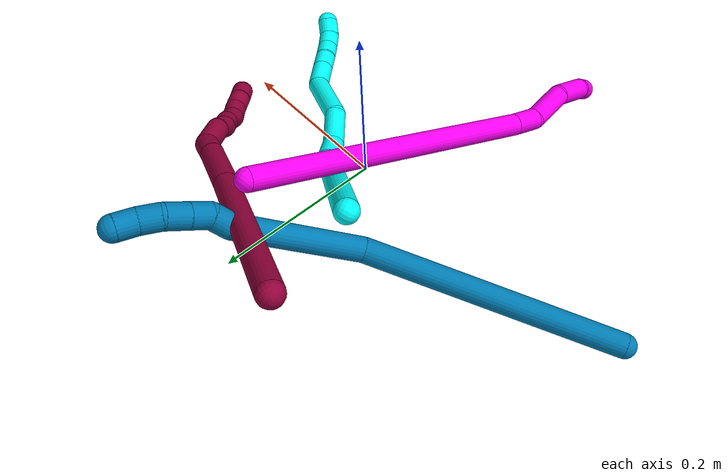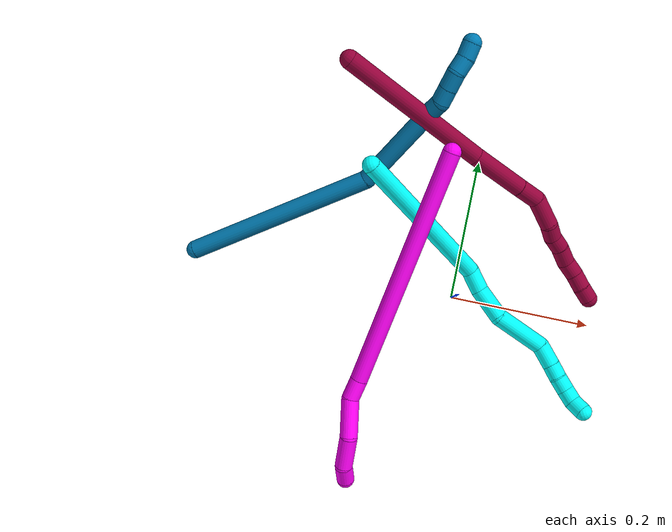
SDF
<sdf version="1.7">
 <world name="default">
  <model name="3">
   <static>0</static>
   <link name="3">
    <collision name="collision-cylinder-e_1_1_4">
     <pose>0.103797 -0.050793 -0.012128 1.80519 1.10467 1.32587</pose>
     <geometry><cylinder><radius>0.0125</radius><length>0.232386</length></cylinder></geometry>
     <surface>
      <friction><ode><mu>1.16</mu><mu2>1.16</mu2><slip1>0</slip1><slip2>0</slip2></ode></friction>
      <contact><ode><kp>1e+06</kp><kd>1</kd><max_vel>0</max_vel><min_depth>0.001</min_depth></ode></contact>
     </surface>
    </collision>
    <visual name="visual-cylinder-e_1_1_4">
     <pose>0.103797 -0.050793 -0.012128 1.80519 1.10467 1.32587</pose>
     <geometry><cylinder><radius>0.0125</radius><length>0.232386</length></cylinder></geometry>
     <material><ambient>0.003922 1 0.996078 1</ambient></material>
    </visual>
    <collision name="collision-cylinder-e_2_4_5">
     <pose>0.223633 -0.100813 -0.025017 -2.34834 1.50335 -2.29911</pose>
     <geometry><cylinder><radius>0.0125</radius><length>0.032151</length></cylinder></geometry>
     <surface>
      <friction><ode><mu>1.16</mu><mu2>1.16</mu2><slip1>0</slip1><slip2>0</slip2></ode></friction>
      <contact><ode><kp>1e+06</kp><kd>1</kd><max_vel>0</max_vel><min_depth>0.001</min_depth></ode></contact>
     </surface>
    </collision>
    <visual name="visual-cylinder-e_2_4_5">
     <pose>0.223633 -0.100813 -0.025017 -2.34834 1.50335 -2.29911</pose>
     <geometry><cylinder><radius>0.0125</radius><length>0.032151</length></cylinder></geometry>
     <material><ambient>0.003922 1 0.996078 1</ambient></material>
    </visual>
    <collision name="collision-cylinder-e_3_5_6">
     <pose>0.261497 -0.094981 -0.032717 -2.51161 1.19587 -2.24917</pose>
     <geometry><cylinder><radius>0.0125</radius><length>0.046908</length></cylinder></geometry>
     <surface>
      <friction><ode><mu>1.16</mu><mu2>1.16</mu2><slip1>0</slip1><slip2>0</slip2></ode></friction>
      <contact><ode><kp>1e+06</kp><kd>1</kd><max_vel>0</max_vel><min_depth>0.001</min_depth></ode></contact>
     </surface>
    </collision>
    <visual name="visual-cylinder-e_3_5_6">
     <pose>0.261497 -0.094981 -0.032717 -2.51161 1.19587 -2.24917</pose>
     <geometry><cylinder><radius>0.0125</radius><length>0.046908</length></cylinder></geometry>
     <material><ambient>0.003922 1 0.996078 1</ambient></material>
    </visual>
    <collision name="collision-cylinder-e_4_6_7">
     <pose>0.316202 -0.096915 -0.056916 2.75659 1.05549 2.49619</pose>
     <geometry><cylinder><radius>0.0125</radius><length>0.075576</length></cylinder></geometry>
     <surface>
      <friction><ode><mu>1.16</mu><mu2>1.16</mu2><slip1>0</slip1><slip2>0</slip2></ode></friction>
      <contact><ode><kp>1e+06</kp><kd>1</kd><max_vel>0</max_vel><min_depth>0.001</min_depth></ode></contact>
     </surface>
    </collision>
    <visual name="visual-cylinder-e_4_6_7">
     <pose>0.316202 -0.096915 -0.056916 2.75659 1.05549 2.49619</pose>
     <geometry><cylinder><radius>0.0125</radius><length>0.075576</length></cylinder></geometry>
     <material><ambient>0.003922 1 0.996078 1</ambient></material>
    </visual>
    <collision name="collision-cylinder-e_5_7_8">
     <pose>0.364119 -0.099918 -0.077238 -2.22546 1.24796 -1.94063</pose>
     <geometry><cylinder><radius>0.0125</radius><length>0.031711</length></cylinder></geometry>
     <surface>
      <friction><ode><mu>1.16</mu><mu2>1.16</mu2><slip1>0</slip1><slip2>0</slip2></ode></friction>
      <contact><ode><kp>1e+06</kp><kd>1</kd><max_vel>0</max_vel><min_depth>0.001</min_depth></ode></contact>
     </surface>
    </collision>
    <visual name="visual-cylinder-e_5_7_8">
     <pose>0.364119 -0.099918 -0.077238 -2.22546 1.24796 -1.94063</pose>
     <geometry><cylinder><radius>0.0125</radius><length>0.031711</length></cylinder></geometry>
     <material><ambient>0.003922 1 0.996078 1</ambient></material>
    </visual>
    <collision name="collision-cylinder-e_6_8_9">
     <pose>0.388575 -0.092775 -0.082192 -2.11106 1.19869 -1.75734</pose>
     <geometry><cylinder><radius>0.0125</radius><length>0.020222</length></cylinder></geometry>
     <surface>
      <friction><ode><mu>1.16</mu><mu2>1.16</mu2><slip1>0</slip1><slip2>0</slip2></ode></friction>
      <contact><ode><kp>1e+06</kp><kd>1</kd><max_vel>0</max_vel><min_depth>0.001</min_depth></ode></contact>
     </surface>
    </collision>
    <visual name="visual-cylinder-e_6_8_9">
     <pose>0.388575 -0.092775 -0.082192 -2.11106 1.19869 -1.75734</pose>
     <geometry><cylinder><radius>0.0125</radius><length>0.020222</length></cylinder></geometry>
     <material><ambient>0.003922 1 0.996078 1</ambient></material>
    </visual>
    <collision name="collision-cylinder-e_7_9_10">
     <pose>0.408003 -0.088103 -0.085966 -2.46265 1.33359 -2.29806</pose>
     <geometry><cylinder><radius>0.0125</radius><length>0.020595</length></cylinder></geometry>
     <surface>
      <friction><ode><mu>1.16</mu><mu2>1.16</mu2><slip1>0</slip1><slip2>0</slip2></ode></friction>
      <contact><ode><kp>1e+06</kp><kd>1</kd><max_vel>0</max_vel><min_depth>0.001</min_depth></ode></contact>
     </surface>
    </collision>
    <visual name="visual-cylinder-e_7_9_10">
     <pose>0.408003 -0.088103 -0.085966 -2.46265 1.33359 -2.29806</pose>
     <geometry><cylinder><radius>0.0125</radius><length>0.020595</length></cylinder></geometry>
     <material><ambient>0.003922 1 0.996078 1</ambient></material>
    </visual>
    <collision name="collision-cylinder-e_8_10_11">
     <pose>0.42697 -0.083069 -0.090662 -2.24565 1.10512 -1.81759</pose>
     <geometry><cylinder><radius>0.0125</radius><length>0.020051</length></cylinder></geometry>
     <surface>
      <friction><ode><mu>1.16</mu><mu2>1.16</mu2><slip1>0</slip1><slip2>0</slip2></ode></friction>
      <contact><ode><kp>1e+06</kp><kd>1</kd><max_vel>0</max_vel><min_depth>0.001</min_depth></ode></contact>
     </surface>
    </collision>
    <visual name="visual-cylinder-e_8_10_11">
     <pose>0.42697 -0.083069 -0.090662 -2.24565 1.10512 -1.81759</pose>
     <geometry><cylinder><radius>0.0125</radius><length>0.020051</length></cylinder></geometry>
     <material><ambient>0.003922 1 0.996078 1</ambient></material>
    </visual>
    <collision name="collision-cylinder-e_9_11_2">
     <pose>0.442847 -0.074583 -0.099084 -2.41649 0.745408 -1.60107</pose>
     <geometry><cylinder><radius>0.0125</radius><length>0.0204</length></cylinder></geometry>
     <surface>
      <friction><ode><mu>1.16</mu><mu2>1.16</mu2><slip1>0</slip1><slip2>0</slip2></ode></friction>
      <contact><ode><kp>1e+06</kp><kd>1</kd><max_vel>0</max_vel><min_depth>0.001</min_depth></ode></contact>
     </surface>
    </collision>
    <visual name="visual-cylinder-e_9_11_2">
     <pose>0.442847 -0.074583 -0.099084 -2.41649 0.745408 -1.60107</pose>
     <geometry><cylinder><radius>0.0125</radius><length>0.0204</length></cylinder></geometry>
     <material><ambient>0.003922 1 0.996078 1</ambient></material>
    </visual>
    <collision name="collision-sphere-2">
     <pose>0.449765 -0.069612 -0.104693 0 -0 0</pose>
     <geometry><sphere><radius>0.0125</radius></sphere></geometry>
     <surface>
      <friction><ode><mu>1.16</mu><mu2>1.16</mu2><slip1>0</slip1><slip2>0</slip2></ode></friction>
      <contact><ode><kp>1e+06</kp><kd>1</kd><max_vel>0</max_vel><min_depth>0.001</min_depth></ode></contact>
     </surface>
    </collision>
    <visual name="visual-sphere-2">
     <pose>0.449765 -0.069612 -0.104693 0 -0 0</pose>
     <geometry><sphere><radius>0.0125</radius></sphere></geometry>
     <material><ambient>0.003922 1 0.996078 1</ambient></material>
    </visual>
    <collision name="collision-sphere-11">
     <pose>0.435929 -0.079554 -0.093474 0 -0 0</pose>
     <geometry><sphere><radius>0.0125</radius></sphere></geometry>
     <surface>
      <friction><ode><mu>1.16</mu><mu2>1.16</mu2><slip1>0</slip1><slip2>0</slip2></ode></friction>
      <contact><ode><kp>1e+06</kp><kd>1</kd><max_vel>0</max_vel><min_depth>0.001</min_depth></ode></contact>
     </surface>
    </collision>
    <visual name="visual-sphere-11">
     <pose>0.435929 -0.079554 -0.093474 0 -0 0</pose>
     <geometry><sphere><radius>0.0125</radius></sphere></geometry>
     <material><ambient>0.003922 1 0.996078 1</ambient></material>
    </visual>
    <collision name="collision-sphere-10">
     <pose>0.418012 -0.086584 -0.087849 0 -0 0</pose>
     <geometry><sphere><radius>0.0125</radius></sphere></geometry>
     <surface>
      <friction><ode><mu>1.16</mu><mu2>1.16</mu2><slip1>0</slip1><slip2>0</slip2></ode></friction>
      <contact><ode><kp>1e+06</kp><kd>1</kd><max_vel>0</max_vel><min_depth>0.001</min_depth></ode></contact>
     </surface>
    </collision>
    <visual name="visual-sphere-10">
     <pose>0.418012 -0.086584 -0.087849 0 -0 0</pose>
     <geometry><sphere><radius>0.0125</radius></sphere></geometry>
     <material><ambient>0.003922 1 0.996078 1</ambient></material>
    </visual>
    <collision name="collision-sphere-9">
     <pose>0.397994 -0.089623 -0.084083 0 -0 0</pose>
     <geometry><sphere><radius>0.0125</radius></sphere></geometry>
     <surface>
      <friction><ode><mu>1.16</mu><mu2>1.16</mu2><slip1>0</slip1><slip2>0</slip2></ode></friction>
      <contact><ode><kp>1e+06</kp><kd>1</kd><max_vel>0</max_vel><min_depth>0.001</min_depth></ode></contact>
     </surface>
    </collision>
    <visual name="visual-sphere-9">
     <pose>0.397994 -0.089623 -0.084083 0 -0 0</pose>
     <geometry><sphere><radius>0.0125</radius></sphere></geometry>
     <material><ambient>0.003922 1 0.996078 1</ambient></material>
    </visual>
    <collision name="collision-sphere-4">
     <pose>0.207595 -0.101585 -0.024257 0 -0 0</pose>
     <geometry><sphere><radius>0.0125</radius></sphere></geometry>
     <surface>
      <friction><ode><mu>1.16</mu><mu2>1.16</mu2><slip1>0</slip1><slip2>0</slip2></ode></friction>
      <contact><ode><kp>1e+06</kp><kd>1</kd><max_vel>0</max_vel><min_depth>0.001</min_depth></ode></contact>
     </surface>
    </collision>
    <visual name="visual-sphere-4">
     <pose>0.207595 -0.101585 -0.024257 0 -0 0</pose>
     <geometry><sphere><radius>0.0125</radius></sphere></geometry>
     <material><ambient>0.003922 1 0.996078 1</ambient></material>
    </visual>
    <collision name="collision-sphere-1">
     <geometry><sphere><radius>0.0125</radius></sphere></geometry>
     <surface>
      <friction><ode><mu>1.16</mu><mu2>1.16</mu2><slip1>0</slip1><slip2>0</slip2></ode></friction>
      <contact><ode><kp>1e+06</kp><kd>1</kd><max_vel>0</max_vel><min_depth>0.001</min_depth></ode></contact>
     </surface>
    </collision>
    <visual name="visual-sphere-1">
     <geometry><sphere><radius>0.0125</radius></sphere></geometry>
     <material><ambient>0.003922 1 0.996078 1</ambient></material>
    </visual>
    <collision name="collision-sphere-8">
     <pose>0.379156 -0.095928 -0.080301 0 -0 0</pose>
     <geometry><sphere><radius>0.0125</radius></sphere></geometry>
     <surface>
      <friction><ode><mu>1.16</mu><mu2>1.16</mu2><slip1>0</slip1><slip2>0</slip2></ode></friction>
      <contact><ode><kp>1e+06</kp><kd>1</kd><max_vel>0</max_vel><min_depth>0.001</min_depth></ode></contact>
     </surface>
    </collision>
    <visual name="visual-sphere-8">
     <pose>0.379156 -0.095928 -0.080301 0 -0 0</pose>
     <geometry><sphere><radius>0.0125</radius></sphere></geometry>
     <material><ambient>0.003922 1 0.996078 1</ambient></material>
    </visual>
    <collision name="collision-sphere-5">
     <pose>0.239672 -0.100041 -0.025777 0 -0 0</pose>
     <geometry><sphere><radius>0.0125</radius></sphere></geometry>
     <surface>
      <friction><ode><mu>1.16</mu><mu2>1.16</mu2><slip1>0</slip1><slip2>0</slip2></ode></friction>
      <contact><ode><kp>1e+06</kp><kd>1</kd><max_vel>0</max_vel><min_depth>0.001</min_depth></ode></contact>
     </surface>
    </collision>
    <visual name="visual-sphere-5">
     <pose>0.239672 -0.100041 -0.025777 0 -0 0</pose>
     <geometry><sphere><radius>0.0125</radius></sphere></geometry>
     <material><ambient>0.003922 1 0.996078 1</ambient></material>
    </visual>
    <collision name="collision-sphere-6">
     <pose>0.283321 -0.089921 -0.039657 0 -0 0</pose>
     <geometry><sphere><radius>0.0125</radius></sphere></geometry>
     <surface>
      <friction><ode><mu>1.16</mu><mu2>1.16</mu2><slip1>0</slip1><slip2>0</slip2></ode></friction>
      <contact><ode><kp>1e+06</kp><kd>1</kd><max_vel>0</max_vel><min_depth>0.001</min_depth></ode></contact>
     </surface>
    </collision>
    <visual name="visual-sphere-6">
     <pose>0.283321 -0.089921 -0.039657 0 -0 0</pose>
     <geometry><sphere><radius>0.0125</radius></sphere></geometry>
     <material><ambient>0.003922 1 0.996078 1</ambient></material>
    </visual>
    <collision name="collision-sphere-7">
     <pose>0.349083 -0.103909 -0.074175 0 -0 0</pose>
     <geometry><sphere><radius>0.0125</radius></sphere></geometry>
     <surface>
      <friction><ode><mu>1.16</mu><mu2>1.16</mu2><slip1>0</slip1><slip2>0</slip2></ode></friction>
      <contact><ode><kp>1e+06</kp><kd>1</kd><max_vel>0</max_vel><min_depth>0.001</min_depth></ode></contact>
     </surface>
    </collision>
    <visual name="visual-sphere-7">
     <pose>0.349083 -0.103909 -0.074175 0 -0 0</pose>
     <geometry><sphere><radius>0.0125</radius></sphere></geometry>
     <material><ambient>0.003922 1 0.996078 1</ambient></material>
    </visual>
    <inertial>
     <pose>0.225754 -0.073741 -0.03836 0 -0 0</pose>
     <mass>0.5</mass>
     <inertia>
      <ixx>0.000596</ixx>
      <ixy>0</ixy>
      <ixz>0</ixz>
      <iyy>0.001348</iyy>
      <iyz>0</iyz>
      <izz>-0.000544</izz>
     </inertia>
    </inertial>
   </link>
   <pose>-0.141141 0.139146 0.176684 2.02592 0.311102 -0.918539</pose>
  </model>
  <model name="8">
   <static>0</static>
   <link name="8">
    <collision name="collision-cylinder-e_1_1_4">
     <pose>-0.0025 0.000155 -0.106496 -3.14014 -0.023466 3.01791</pose>
     <geometry><cylinder><radius>0.0125</radius><length>0.213052</length></cylinder></geometry>
     <surface>
      <friction><ode><mu>1.16</mu><mu2>1.16</mu2><slip1>0</slip1><slip2>0</slip2></ode></friction>
      <contact><ode><kp>1e+06</kp><kd>1</kd><max_vel>0</max_vel><min_depth>0.001</min_depth></ode></contact>
     </surface>
    </collision>
    <visual name="visual-cylinder-e_1_1_4">
     <pose>-0.0025 0.000155 -0.106496 -3.14014 -0.023466 3.01791</pose>
     <geometry><cylinder><radius>0.0125</radius><length>0.213052</length></cylinder></geometry>
     <material><ambient>0.584314 0 0.227451 1</ambient></material>
    </visual>
    <collision name="collision-cylinder-e_2_4_5">
     <pose>-0.006296 0.001815 -0.251692 -3.1027 -0.033486 1.42164</pose>
     <geometry><cylinder><radius>0.0125</radius><length>0.077501</length></cylinder></geometry>
     <surface>
      <friction><ode><mu>1.16</mu><mu2>1.16</mu2><slip1>0</slip1><slip2>0</slip2></ode></friction>
      <contact><ode><kp>1e+06</kp><kd>1</kd><max_vel>0</max_vel><min_depth>0.001</min_depth></ode></contact>
     </surface>
    </collision>
    <visual name="visual-cylinder-e_2_4_5">
     <pose>-0.006296 0.001815 -0.251692 -3.1027 -0.033486 1.42164</pose>
     <geometry><cylinder><radius>0.0125</radius><length>0.077501</length></cylinder></geometry>
     <material><ambient>0.584314 0 0.227451 1</ambient></material>
    </visual>
    <collision name="collision-cylinder-e_3_5_6">
     <pose>-0.008947 0.003141 -0.306723 3.13055 -0.082692 -2.87625</pose>
     <geometry><cylinder><radius>0.0125</radius><length>0.032778</length></cylinder></geometry>
     <surface>
      <friction><ode><mu>1.16</mu><mu2>1.16</mu2><slip1>0</slip1><slip2>0</slip2></ode></friction>
      <contact><ode><kp>1e+06</kp><kd>1</kd><max_vel>0</max_vel><min_depth>0.001</min_depth></ode></contact>
     </surface>
    </collision>
    <visual name="visual-cylinder-e_3_5_6">
     <pose>-0.008947 0.003141 -0.306723 3.13055 -0.082692 -2.87625</pose>
     <geometry><cylinder><radius>0.0125</radius><length>0.032778</length></cylinder></geometry>
     <material><ambient>0.584314 0 0.227451 1</ambient></material>
    </visual>
    <collision name="collision-cylinder-e_4_6_7">
     <pose>-0.002861 -0.000801 -0.341884 2.94443 0.369681 2.1685</pose>
     <geometry><cylinder><radius>0.0125</radius><length>0.041184</length></cylinder></geometry>
     <surface>
      <friction><ode><mu>1.16</mu><mu2>1.16</mu2><slip1>0</slip1><slip2>0</slip2></ode></friction>
      <contact><ode><kp>1e+06</kp><kd>1</kd><max_vel>0</max_vel><min_depth>0.001</min_depth></ode></contact>
     </surface>
    </collision>
    <visual name="visual-cylinder-e_4_6_7">
     <pose>-0.002861 -0.000801 -0.341884 2.94443 0.369681 2.1685</pose>
     <geometry><cylinder><radius>0.0125</radius><length>0.041184</length></cylinder></geometry>
     <material><ambient>0.584314 0 0.227451 1</ambient></material>
    </visual>
    <collision name="collision-cylinder-e_5_7_8">
     <pose>0.007131 -0.009541 -0.370234 2.65969 0.233218 0.88969</pose>
     <geometry><cylinder><radius>0.0125</radius><length>0.022086</length></cylinder></geometry>
     <surface>
      <friction><ode><mu>1.16</mu><mu2>1.16</mu2><slip1>0</slip1><slip2>0</slip2></ode></friction>
      <contact><ode><kp>1e+06</kp><kd>1</kd><max_vel>0</max_vel><min_depth>0.001</min_depth></ode></contact>
     </surface>
    </collision>
    <visual name="visual-cylinder-e_5_7_8">
     <pose>0.007131 -0.009541 -0.370234 2.65969 0.233218 0.88969</pose>
     <geometry><cylinder><radius>0.0125</radius><length>0.022086</length></cylinder></geometry>
     <material><ambient>0.584314 0 0.227451 1</ambient></material>
    </visual>
    <collision name="collision-cylinder-e_6_8_9">
     <pose>0.011259 -0.016758 -0.38976 2.92165 0.152507 1.21058</pose>
     <geometry><cylinder><radius>0.0125</radius><length>0.020746</length></cylinder></geometry>
     <surface>
      <friction><ode><mu>1.16</mu><mu2>1.16</mu2><slip1>0</slip1><slip2>0</slip2></ode></friction>
      <contact><ode><kp>1e+06</kp><kd>1</kd><max_vel>0</max_vel><min_depth>0.001</min_depth></ode></contact>
     </surface>
    </collision>
    <visual name="visual-cylinder-e_6_8_9">
     <pose>0.011259 -0.016758 -0.38976 2.92165 0.152507 1.21058</pose>
     <geometry><cylinder><radius>0.0125</radius><length>0.020746</length></cylinder></geometry>
     <material><ambient>0.584314 0 0.227451 1</ambient></material>
    </visual>
    <collision name="collision-cylinder-e_7_9_10">
     <pose>0.015918 -0.023835 -0.41218 2.76986 0.227357 1.09136</pose>
     <geometry><cylinder><radius>0.0125</radius><length>0.027353</length></cylinder></geometry>
     <surface>
      <friction><ode><mu>1.16</mu><mu2>1.16</mu2><slip1>0</slip1><slip2>0</slip2></ode></friction>
      <contact><ode><kp>1e+06</kp><kd>1</kd><max_vel>0</max_vel><min_depth>0.001</min_depth></ode></contact>
     </surface>
    </collision>
    <visual name="visual-cylinder-e_7_9_10">
     <pose>0.015918 -0.023835 -0.41218 2.76986 0.227357 1.09136</pose>
     <geometry><cylinder><radius>0.0125</radius><length>0.027353</length></cylinder></geometry>
     <material><ambient>0.584314 0 0.227451 1</ambient></material>
    </visual>
    <collision name="collision-cylinder-e_8_10_11">
     <pose>0.022441 -0.029115 -0.435312 3.10055 0.31033 2.88067</pose>
     <geometry><cylinder><radius>0.0125</radius><length>0.02253</length></cylinder></geometry>
     <surface>
      <friction><ode><mu>1.16</mu><mu2>1.16</mu2><slip1>0</slip1><slip2>0</slip2></ode></friction>
      <contact><ode><kp>1e+06</kp><kd>1</kd><max_vel>0</max_vel><min_depth>0.001</min_depth></ode></contact>
     </surface>
    </collision>
    <visual name="visual-cylinder-e_8_10_11">
     <pose>0.022441 -0.029115 -0.435312 3.10055 0.31033 2.88067</pose>
     <geometry><cylinder><radius>0.0125</radius><length>0.02253</length></cylinder></geometry>
     <material><ambient>0.584314 0 0.227451 1</ambient></material>
    </visual>
    <collision name="collision-cylinder-e_9_11_12">
     <pose>0.030901 -0.029843 -0.455946 3.11256 0.468476 3.02007</pose>
     <geometry><cylinder><radius>0.0125</radius><length>0.022235</length></cylinder></geometry>
     <surface>
      <friction><ode><mu>1.16</mu><mu2>1.16</mu2><slip1>0</slip1><slip2>0</slip2></ode></friction>
      <contact><ode><kp>1e+06</kp><kd>1</kd><max_vel>0</max_vel><min_depth>0.001</min_depth></ode></contact>
     </surface>
    </collision>
    <visual name="visual-cylinder-e_9_11_12">
     <pose>0.030901 -0.029843 -0.455946 3.11256 0.468476 3.02007</pose>
     <geometry><cylinder><radius>0.0125</radius><length>0.022235</length></cylinder></geometry>
     <material><ambient>0.584314 0 0.227451 1</ambient></material>
    </visual>
    <collision name="collision-cylinder-e_10_12_2">
     <pose>0.039339 -0.030879 -0.475514 3.06423 0.339435 2.69739</pose>
     <geometry><cylinder><radius>0.0125</radius><length>0.020536</length></cylinder></geometry>
     <surface>
      <friction><ode><mu>1.16</mu><mu2>1.16</mu2><slip1>0</slip1><slip2>0</slip2></ode></friction>
      <contact><ode><kp>1e+06</kp><kd>1</kd><max_vel>0</max_vel><min_depth>0.001</min_depth></ode></contact>
     </surface>
    </collision>
    <visual name="visual-cylinder-e_10_12_2">
     <pose>0.039339 -0.030879 -0.475514 3.06423 0.339435 2.69739</pose>
     <geometry><cylinder><radius>0.0125</radius><length>0.020536</length></cylinder></geometry>
     <material><ambient>0.584314 0 0.227451 1</ambient></material>
    </visual>
    <collision name="collision-sphere-2">
     <pose>0.042758 -0.031627 -0.485167 0 -0 0</pose>
     <geometry><sphere><radius>0.0125</radius></sphere></geometry>
     <surface>
      <friction><ode><mu>1.16</mu><mu2>1.16</mu2><slip1>0</slip1><slip2>0</slip2></ode></friction>
      <contact><ode><kp>1e+06</kp><kd>1</kd><max_vel>0</max_vel><min_depth>0.001</min_depth></ode></contact>
     </surface>
    </collision>
    <visual name="visual-sphere-2">
     <pose>0.042758 -0.031627 -0.485167 0 -0 0</pose>
     <geometry><sphere><radius>0.0125</radius></sphere></geometry>
     <material><ambient>0.584314 0 0.227451 1</ambient></material>
    </visual>
    <collision name="collision-sphere-12">
     <pose>0.03592 -0.030131 -0.465861 0 -0 0</pose>
     <geometry><sphere><radius>0.0125</radius></sphere></geometry>
     <surface>
      <friction><ode><mu>1.16</mu><mu2>1.16</mu2><slip1>0</slip1><slip2>0</slip2></ode></friction>
      <contact><ode><kp>1e+06</kp><kd>1</kd><max_vel>0</max_vel><min_depth>0.001</min_depth></ode></contact>
     </surface>
    </collision>
    <visual name="visual-sphere-12">
     <pose>0.03592 -0.030131 -0.465861 0 -0 0</pose>
     <geometry><sphere><radius>0.0125</radius></sphere></geometry>
     <material><ambient>0.584314 0 0.227451 1</ambient></material>
    </visual>
    <collision name="collision-sphere-11">
     <pose>0.025881 -0.029555 -0.44603 0 -0 0</pose>
     <geometry><sphere><radius>0.0125</radius></sphere></geometry>
     <surface>
      <friction><ode><mu>1.16</mu><mu2>1.16</mu2><slip1>0</slip1><slip2>0</slip2></ode></friction>
      <contact><ode><kp>1e+06</kp><kd>1</kd><max_vel>0</max_vel><min_depth>0.001</min_depth></ode></contact>
     </surface>
    </collision>
    <visual name="visual-sphere-11">
     <pose>0.025881 -0.029555 -0.44603 0 -0 0</pose>
     <geometry><sphere><radius>0.0125</radius></sphere></geometry>
     <material><ambient>0.584314 0 0.227451 1</ambient></material>
    </visual>
    <collision name="collision-sphere-10">
     <pose>0.019001 -0.028674 -0.424595 0 -0 0</pose>
     <geometry><sphere><radius>0.0125</radius></sphere></geometry>
     <surface>
      <friction><ode><mu>1.16</mu><mu2>1.16</mu2><slip1>0</slip1><slip2>0</slip2></ode></friction>
      <contact><ode><kp>1e+06</kp><kd>1</kd><max_vel>0</max_vel><min_depth>0.001</min_depth></ode></contact>
     </surface>
    </collision>
    <visual name="visual-sphere-10">
     <pose>0.019001 -0.028674 -0.424595 0 -0 0</pose>
     <geometry><sphere><radius>0.0125</radius></sphere></geometry>
     <material><ambient>0.584314 0 0.227451 1</ambient></material>
    </visual>
    <collision name="collision-sphere-9">
     <pose>0.012835 -0.018995 -0.399765 0 -0 0</pose>
     <geometry><sphere><radius>0.0125</radius></sphere></geometry>
     <surface>
      <friction><ode><mu>1.16</mu><mu2>1.16</mu2><slip1>0</slip1><slip2>0</slip2></ode></friction>
      <contact><ode><kp>1e+06</kp><kd>1</kd><max_vel>0</max_vel><min_depth>0.001</min_depth></ode></contact>
     </surface>
    </collision>
    <visual name="visual-sphere-9">
     <pose>0.012835 -0.018995 -0.399765 0 -0 0</pose>
     <geometry><sphere><radius>0.0125</radius></sphere></geometry>
     <material><ambient>0.584314 0 0.227451 1</ambient></material>
    </visual>
    <collision name="collision-sphere-4">
     <pose>-0.004999 0.000309 -0.212993 0 -0 0</pose>
     <geometry><sphere><radius>0.0125</radius></sphere></geometry>
     <surface>
      <friction><ode><mu>1.16</mu><mu2>1.16</mu2><slip1>0</slip1><slip2>0</slip2></ode></friction>
      <contact><ode><kp>1e+06</kp><kd>1</kd><max_vel>0</max_vel><min_depth>0.001</min_depth></ode></contact>
     </surface>
    </collision>
    <visual name="visual-sphere-4">
     <pose>-0.004999 0.000309 -0.212993 0 -0 0</pose>
     <geometry><sphere><radius>0.0125</radius></sphere></geometry>
     <material><ambient>0.584314 0 0.227451 1</ambient></material>
    </visual>
    <collision name="collision-sphere-1">
     <geometry><sphere><radius>0.0125</radius></sphere></geometry>
     <surface>
      <friction><ode><mu>1.16</mu><mu2>1.16</mu2><slip1>0</slip1><slip2>0</slip2></ode></friction>
      <contact><ode><kp>1e+06</kp><kd>1</kd><max_vel>0</max_vel><min_depth>0.001</min_depth></ode></contact>
     </surface>
    </collision>
    <visual name="visual-sphere-1">
     <geometry><sphere><radius>0.0125</radius></sphere></geometry>
     <material><ambient>0.584314 0 0.227451 1</ambient></material>
    </visual>
    <collision name="collision-sphere-8">
     <pose>0.009684 -0.014521 -0.379754 0 -0 0</pose>
     <geometry><sphere><radius>0.0125</radius></sphere></geometry>
     <surface>
      <friction><ode><mu>1.16</mu><mu2>1.16</mu2><slip1>0</slip1><slip2>0</slip2></ode></friction>
      <contact><ode><kp>1e+06</kp><kd>1</kd><max_vel>0</max_vel><min_depth>0.001</min_depth></ode></contact>
     </surface>
    </collision>
    <visual name="visual-sphere-8">
     <pose>0.009684 -0.014521 -0.379754 0 -0 0</pose>
     <geometry><sphere><radius>0.0125</radius></sphere></geometry>
     <material><ambient>0.584314 0 0.227451 1</ambient></material>
    </visual>
    <collision name="collision-sphere-5">
     <pose>-0.007594 0.003321 -0.290391 0 -0 0</pose>
     <geometry><sphere><radius>0.0125</radius></sphere></geometry>
     <surface>
      <friction><ode><mu>1.16</mu><mu2>1.16</mu2><slip1>0</slip1><slip2>0</slip2></ode></friction>
      <contact><ode><kp>1e+06</kp><kd>1</kd><max_vel>0</max_vel><min_depth>0.001</min_depth></ode></contact>
     </surface>
    </collision>
    <visual name="visual-sphere-5">
     <pose>-0.007594 0.003321 -0.290391 0 -0 0</pose>
     <geometry><sphere><radius>0.0125</radius></sphere></geometry>
     <material><ambient>0.584314 0 0.227451 1</ambient></material>
    </visual>
    <collision name="collision-sphere-6">
     <pose>-0.010301 0.002961 -0.323056 0 -0 0</pose>
     <geometry><sphere><radius>0.0125</radius></sphere></geometry>
     <surface>
      <friction><ode><mu>1.16</mu><mu2>1.16</mu2><slip1>0</slip1><slip2>0</slip2></ode></friction>
      <contact><ode><kp>1e+06</kp><kd>1</kd><max_vel>0</max_vel><min_depth>0.001</min_depth></ode></contact>
     </surface>
    </collision>
    <visual name="visual-sphere-6">
     <pose>-0.010301 0.002961 -0.323056 0 -0 0</pose>
     <geometry><sphere><radius>0.0125</radius></sphere></geometry>
     <material><ambient>0.584314 0 0.227451 1</ambient></material>
    </visual>
    <collision name="collision-sphere-7">
     <pose>0.004579 -0.004562 -0.360713 0 -0 0</pose>
     <geometry><sphere><radius>0.0125</radius></sphere></geometry>
     <surface>
      <friction><ode><mu>1.16</mu><mu2>1.16</mu2><slip1>0</slip1><slip2>0</slip2></ode></friction>
      <contact><ode><kp>1e+06</kp><kd>1</kd><max_vel>0</max_vel><min_depth>0.001</min_depth></ode></contact>
     </surface>
    </collision>
    <visual name="visual-sphere-7">
     <pose>0.004579 -0.004562 -0.360713 0 -0 0</pose>
     <geometry><sphere><radius>0.0125</radius></sphere></geometry>
     <material><ambient>0.584314 0 0.227451 1</ambient></material>
    </visual>
    <inertial>
     <pose>0.002791 -0.005841 -0.247155 0 -0 0</pose>
     <mass>0.5</mass>
     <inertia>
      <ixx>-0.000655</ixx>
      <ixy>0</ixy>
      <ixz>0</ixz>
      <iyy>0.000963</iyy>
      <iyz>0</iyz>
      <izz>-2.2e-05</izz>
     </inertia>
    </inertial>
   </link>
   <pose>-0.191407 0.254846 0.225248 1.1049 -0.401697 -1.77248</pose>
  </model>
  <model name="9">
   <static>0</static>
   <link name="9">
    <collision name="collision-cylinder-e_1_1_4">
     <pose>0.091109 0.038575 0.088283 -0.411945 0.757482 -0.165912</pose>
     <geometry><cylinder><radius>0.0125</radius><length>0.265201</length></cylinder></geometry>
     <surface>
      <friction><ode><mu>1.16</mu><mu2>1.16</mu2><slip1>0</slip1><slip2>0</slip2></ode></friction>
      <contact><ode><kp>1e+06</kp><kd>1</kd><max_vel>0</max_vel><min_depth>0.001</min_depth></ode></contact>
     </surface>
    </collision>
    <visual name="visual-cylinder-e_1_1_4">
     <pose>0.091109 0.038575 0.088283 -0.411945 0.757482 -0.165912</pose>
     <geometry><cylinder><radius>0.0125</radius><length>0.265201</length></cylinder></geometry>
     <material><ambient>0 0.490196 0.709804 1</ambient></material>
    </visual>
    <collision name="collision-cylinder-e_2_4_5">
     <pose>0.226588 0.117116 0.201149 -1.01936 0.757473 -0.437731</pose>
     <geometry><cylinder><radius>0.0125</radius><length>0.129155</length></cylinder></geometry>
     <surface>
      <friction><ode><mu>1.16</mu><mu2>1.16</mu2><slip1>0</slip1><slip2>0</slip2></ode></friction>
      <contact><ode><kp>1e+06</kp><kd>1</kd><max_vel>0</max_vel><min_depth>0.001</min_depth></ode></contact>
     </surface>
    </collision>
    <visual name="visual-cylinder-e_2_4_5">
     <pose>0.226588 0.117116 0.201149 -1.01936 0.757473 -0.437731</pose>
     <geometry><cylinder><radius>0.0125</radius><length>0.129155</length></cylinder></geometry>
     <material><ambient>0 0.490196 0.709804 1</ambient></material>
    </visual>
    <collision name="collision-cylinder-e_3_5_6">
     <pose>0.275204 0.165499 0.231148 -0.998986 0.401131 -0.220954</pose>
     <geometry><cylinder><radius>0.0125</radius><length>0.021746</length></cylinder></geometry>
     <surface>
      <friction><ode><mu>1.16</mu><mu2>1.16</mu2><slip1>0</slip1><slip2>0</slip2></ode></friction>
      <contact><ode><kp>1e+06</kp><kd>1</kd><max_vel>0</max_vel><min_depth>0.001</min_depth></ode></contact>
     </surface>
    </collision>
    <visual name="visual-cylinder-e_3_5_6">
     <pose>0.275204 0.165499 0.231148 -0.998986 0.401131 -0.220954</pose>
     <geometry><cylinder><radius>0.0125</radius><length>0.021746</length></cylinder></geometry>
     <material><ambient>0 0.490196 0.709804 1</ambient></material>
    </visual>
    <collision name="collision-cylinder-e_4_6_7">
     <pose>0.286537 0.181098 0.237896 -1.38757 0.77038 -0.650481</pose>
     <geometry><cylinder><radius>0.0125</radius><length>0.020356</length></cylinder></geometry>
     <surface>
      <friction><ode><mu>1.16</mu><mu2>1.16</mu2><slip1>0</slip1><slip2>0</slip2></ode></friction>
      <contact><ode><kp>1e+06</kp><kd>1</kd><max_vel>0</max_vel><min_depth>0.001</min_depth></ode></contact>
     </surface>
    </collision>
    <visual name="visual-cylinder-e_4_6_7">
     <pose>0.286537 0.181098 0.237896 -1.38757 0.77038 -0.650481</pose>
     <geometry><cylinder><radius>0.0125</radius><length>0.020356</length></cylinder></geometry>
     <material><ambient>0 0.490196 0.709804 1</ambient></material>
    </visual>
    <collision name="collision-cylinder-e_5_7_8">
     <pose>0.301526 0.196286 0.240709 -1.38772 0.770342 -0.650541</pose>
     <geometry><cylinder><radius>0.0125</radius><length>0.02269</length></cylinder></geometry>
     <surface>
      <friction><ode><mu>1.16</mu><mu2>1.16</mu2><slip1>0</slip1><slip2>0</slip2></ode></friction>
      <contact><ode><kp>1e+06</kp><kd>1</kd><max_vel>0</max_vel><min_depth>0.001</min_depth></ode></contact>
     </surface>
    </collision>
    <visual name="visual-cylinder-e_5_7_8">
     <pose>0.301526 0.196286 0.240709 -1.38772 0.770342 -0.650541</pose>
     <geometry><cylinder><radius>0.0125</radius><length>0.02269</length></cylinder></geometry>
     <material><ambient>0 0.490196 0.709804 1</ambient></material>
    </visual>
    <collision name="collision-cylinder-e_6_8_9">
     <pose>0.318615 0.208862 0.243355 -1.32134 1.09661 -0.886376</pose>
     <geometry><cylinder><radius>0.0125</radius><length>0.020658</length></cylinder></geometry>
     <surface>
      <friction><ode><mu>1.16</mu><mu2>1.16</mu2><slip1>0</slip1><slip2>0</slip2></ode></friction>
      <contact><ode><kp>1e+06</kp><kd>1</kd><max_vel>0</max_vel><min_depth>0.001</min_depth></ode></contact>
     </surface>
    </collision>
    <visual name="visual-cylinder-e_6_8_9">
     <pose>0.318615 0.208862 0.243355 -1.32134 1.09661 -0.886376</pose>
     <geometry><cylinder><radius>0.0125</radius><length>0.020658</length></cylinder></geometry>
     <material><ambient>0 0.490196 0.709804 1</ambient></material>
    </visual>
    <collision name="collision-cylinder-e_7_9_2">
     <pose>0.336305 0.218862 0.244054 -1.65643 1.00073 -1.07453</pose>
     <geometry><cylinder><radius>0.0125</radius><length>0.020195</length></cylinder></geometry>
     <surface>
      <friction><ode><mu>1.16</mu><mu2>1.16</mu2><slip1>0</slip1><slip2>0</slip2></ode></friction>
      <contact><ode><kp>1e+06</kp><kd>1</kd><max_vel>0</max_vel><min_depth>0.001</min_depth></ode></contact>
     </surface>
    </collision>
    <visual name="visual-cylinder-e_7_9_2">
     <pose>0.336305 0.218862 0.244054 -1.65643 1.00073 -1.07453</pose>
     <geometry><cylinder><radius>0.0125</radius><length>0.020195</length></cylinder></geometry>
     <material><ambient>0 0.490196 0.709804 1</ambient></material>
    </visual>
    <collision name="collision-sphere-2">
     <pose>0.344806 0.224292 0.243588 0 -0 0</pose>
     <geometry><sphere><radius>0.0125</radius></sphere></geometry>
     <surface>
      <friction><ode><mu>1.16</mu><mu2>1.16</mu2><slip1>0</slip1><slip2>0</slip2></ode></friction>
      <contact><ode><kp>1e+06</kp><kd>1</kd><max_vel>0</max_vel><min_depth>0.001</min_depth></ode></contact>
     </surface>
    </collision>
    <visual name="visual-sphere-2">
     <pose>0.344806 0.224292 0.243588 0 -0 0</pose>
     <geometry><sphere><radius>0.0125</radius></sphere></geometry>
     <material><ambient>0 0.490196 0.709804 1</ambient></material>
    </visual>
    <collision name="collision-sphere-9">
     <pose>0.327804 0.213432 0.24452 0 -0 0</pose>
     <geometry><sphere><radius>0.0125</radius></sphere></geometry>
     <surface>
      <friction><ode><mu>1.16</mu><mu2>1.16</mu2><slip1>0</slip1><slip2>0</slip2></ode></friction>
      <contact><ode><kp>1e+06</kp><kd>1</kd><max_vel>0</max_vel><min_depth>0.001</min_depth></ode></contact>
     </surface>
    </collision>
    <visual name="visual-sphere-9">
     <pose>0.327804 0.213432 0.24452 0 -0 0</pose>
     <geometry><sphere><radius>0.0125</radius></sphere></geometry>
     <material><ambient>0 0.490196 0.709804 1</ambient></material>
    </visual>
    <collision name="collision-sphere-4">
     <pose>0.182218 0.07715 0.176567 0 -0 0</pose>
     <geometry><sphere><radius>0.0125</radius></sphere></geometry>
     <surface>
      <friction><ode><mu>1.16</mu><mu2>1.16</mu2><slip1>0</slip1><slip2>0</slip2></ode></friction>
      <contact><ode><kp>1e+06</kp><kd>1</kd><max_vel>0</max_vel><min_depth>0.001</min_depth></ode></contact>
     </surface>
    </collision>
    <visual name="visual-sphere-4">
     <pose>0.182218 0.07715 0.176567 0 -0 0</pose>
     <geometry><sphere><radius>0.0125</radius></sphere></geometry>
     <material><ambient>0 0.490196 0.709804 1</ambient></material>
    </visual>
    <collision name="collision-sphere-1">
     <geometry><sphere><radius>0.0125</radius></sphere></geometry>
     <surface>
      <friction><ode><mu>1.16</mu><mu2>1.16</mu2><slip1>0</slip1><slip2>0</slip2></ode></friction>
      <contact><ode><kp>1e+06</kp><kd>1</kd><max_vel>0</max_vel><min_depth>0.001</min_depth></ode></contact>
     </surface>
    </collision>
    <visual name="visual-sphere-1">
     <geometry><sphere><radius>0.0125</radius></sphere></geometry>
     <material><ambient>0 0.490196 0.709804 1</ambient></material>
    </visual>
    <collision name="collision-sphere-8">
     <pose>0.309426 0.204292 0.242191 0 -0 0</pose>
     <geometry><sphere><radius>0.0125</radius></sphere></geometry>
     <surface>
      <friction><ode><mu>1.16</mu><mu2>1.16</mu2><slip1>0</slip1><slip2>0</slip2></ode></friction>
      <contact><ode><kp>1e+06</kp><kd>1</kd><max_vel>0</max_vel><min_depth>0.001</min_depth></ode></contact>
     </surface>
    </collision>
    <visual name="visual-sphere-8">
     <pose>0.309426 0.204292 0.242191 0 -0 0</pose>
     <geometry><sphere><radius>0.0125</radius></sphere></geometry>
     <material><ambient>0 0.490196 0.709804 1</ambient></material>
    </visual>
    <collision name="collision-sphere-5">
     <pose>0.270958 0.157081 0.225731 0 -0 0</pose>
     <geometry><sphere><radius>0.0125</radius></sphere></geometry>
     <surface>
      <friction><ode><mu>1.16</mu><mu2>1.16</mu2><slip1>0</slip1><slip2>0</slip2></ode></friction>
      <contact><ode><kp>1e+06</kp><kd>1</kd><max_vel>0</max_vel><min_depth>0.001</min_depth></ode></contact>
     </surface>
    </collision>
    <visual name="visual-sphere-5">
     <pose>0.270958 0.157081 0.225731 0 -0 0</pose>
     <geometry><sphere><radius>0.0125</radius></sphere></geometry>
     <material><ambient>0 0.490196 0.709804 1</ambient></material>
    </visual>
    <collision name="collision-sphere-6">
     <pose>0.279449 0.173916 0.236565 0 -0 0</pose>
     <geometry><sphere><radius>0.0125</radius></sphere></geometry>
     <surface>
      <friction><ode><mu>1.16</mu><mu2>1.16</mu2><slip1>0</slip1><slip2>0</slip2></ode></friction>
      <contact><ode><kp>1e+06</kp><kd>1</kd><max_vel>0</max_vel><min_depth>0.001</min_depth></ode></contact>
     </surface>
    </collision>
    <visual name="visual-sphere-6">
     <pose>0.279449 0.173916 0.236565 0 -0 0</pose>
     <geometry><sphere><radius>0.0125</radius></sphere></geometry>
     <material><ambient>0 0.490196 0.709804 1</ambient></material>
    </visual>
    <collision name="collision-sphere-7">
     <pose>0.293625 0.18828 0.239226 0 -0 0</pose>
     <geometry><sphere><radius>0.0125</radius></sphere></geometry>
     <surface>
      <friction><ode><mu>1.16</mu><mu2>1.16</mu2><slip1>0</slip1><slip2>0</slip2></ode></friction>
      <contact><ode><kp>1e+06</kp><kd>1</kd><max_vel>0</max_vel><min_depth>0.001</min_depth></ode></contact>
     </surface>
    </collision>
    <visual name="visual-sphere-7">
     <pose>0.293625 0.18828 0.239226 0 -0 0</pose>
     <geometry><sphere><radius>0.0125</radius></sphere></geometry>
     <material><ambient>0 0.490196 0.709804 1</ambient></material>
    </visual>
    <inertial>
     <pose>0.170919 0.09166 0.149358 0 -0 0</pose>
     <mass>0.5</mass>
     <inertia>
      <ixx>0.001026</ixx>
      <ixy>0</ixy>
      <ixz>0</ixz>
      <iyy>0.001394</iyy>
      <iyz>0</iyz>
      <izz>-0.001763</izz>
     </inertia>
    </inertial>
   </link>
   <pose>-0.366054 -0.008316 0.050295 1.26003 0.321626 1.1556</pose>
  </model>
  <model name="10">
   <static>0</static>
   <link name="10">
    <collision name="collision-cylinder-e_1_1_4">
     <pose>-0.012685 -0.117515 -0.122354 2.37636 -0.074635 -0.18501</pose>
     <geometry><cylinder><radius>0.0125</radius><length>0.340242</length></cylinder></geometry>
     <surface>
      <friction><ode><mu>1.16</mu><mu2>1.16</mu2><slip1>0</slip1><slip2>0</slip2></ode></friction>
      <contact><ode><kp>1e+06</kp><kd>1</kd><max_vel>0</max_vel><min_depth>0.001</min_depth></ode></contact>
     </surface>
    </collision>
    <visual name="visual-cylinder-e_1_1_4">
     <pose>-0.012685 -0.117515 -0.122354 2.37636 -0.074635 -0.18501</pose>
     <geometry><cylinder><radius>0.0125</radius><length>0.340242</length></cylinder></geometry>
     <material><ambient>1 0 0.964706 1</ambient></material>
    </visual>
    <collision name="collision-cylinder-e_2_4_5">
     <pose>-0.024877 -0.24426 -0.256479 2.47664 0.033009 0.095533</pose>
     <geometry><cylinder><radius>0.0125</radius><length>0.029933</length></cylinder></geometry>
     <surface>
      <friction><ode><mu>1.16</mu><mu2>1.16</mu2><slip1>0</slip1><slip2>0</slip2></ode></friction>
      <contact><ode><kp>1e+06</kp><kd>1</kd><max_vel>0</max_vel><min_depth>0.001</min_depth></ode></contact>
     </surface>
    </collision>
    <visual name="visual-cylinder-e_2_4_5">
     <pose>-0.024877 -0.24426 -0.256479 2.47664 0.033009 0.095533</pose>
     <geometry><cylinder><radius>0.0125</radius><length>0.029933</length></cylinder></geometry>
     <material><ambient>1 0 0.964706 1</ambient></material>
    </visual>
    <collision name="collision-cylinder-e_3_5_6">
     <pose>-0.030599 -0.263006 -0.292864 2.77266 -0.231351 -1.11394</pose>
     <geometry><cylinder><radius>0.0125</radius><length>0.054223</length></cylinder></geometry>
     <surface>
      <friction><ode><mu>1.16</mu><mu2>1.16</mu2><slip1>0</slip1><slip2>0</slip2></ode></friction>
      <contact><ode><kp>1e+06</kp><kd>1</kd><max_vel>0</max_vel><min_depth>0.001</min_depth></ode></contact>
     </surface>
    </collision>
    <visual name="visual-cylinder-e_3_5_6">
     <pose>-0.030599 -0.263006 -0.292864 2.77266 -0.231351 -1.11394</pose>
     <geometry><cylinder><radius>0.0125</radius><length>0.054223</length></cylinder></geometry>
     <material><ambient>1 0 0.964706 1</ambient></material>
    </visual>
    <collision name="collision-cylinder-e_4_6_7">
     <pose>-0.043433 -0.287749 -0.334124 2.4007 -0.285332 -0.708501</pose>
     <geometry><cylinder><radius>0.0125</radius><length>0.047019</length></cylinder></geometry>
     <surface>
      <friction><ode><mu>1.16</mu><mu2>1.16</mu2><slip1>0</slip1><slip2>0</slip2></ode></friction>
      <contact><ode><kp>1e+06</kp><kd>1</kd><max_vel>0</max_vel><min_depth>0.001</min_depth></ode></contact>
     </surface>
    </collision>
    <visual name="visual-cylinder-e_4_6_7">
     <pose>-0.043433 -0.287749 -0.334124 2.4007 -0.285332 -0.708501</pose>
     <geometry><cylinder><radius>0.0125</radius><length>0.047019</length></cylinder></geometry>
     <material><ambient>1 0 0.964706 1</ambient></material>
    </visual>
    <collision name="collision-cylinder-e_5_7_2">
     <pose>-0.058223 -0.312645 -0.357398 2.17172 -0.608776 -1.07528</pose>
     <geometry><cylinder><radius>0.0125</radius><length>0.028582</length></cylinder></geometry>
     <surface>
      <friction><ode><mu>1.16</mu><mu2>1.16</mu2><slip1>0</slip1><slip2>0</slip2></ode></friction>
      <contact><ode><kp>1e+06</kp><kd>1</kd><max_vel>0</max_vel><min_depth>0.001</min_depth></ode></contact>
     </surface>
    </collision>
    <visual name="visual-cylinder-e_5_7_2">
     <pose>-0.058223 -0.312645 -0.357398 2.17172 -0.608776 -1.07528</pose>
     <geometry><cylinder><radius>0.0125</radius><length>0.028582</length></cylinder></geometry>
     <material><ambient>1 0 0.964706 1</ambient></material>
    </visual>
    <collision name="collision-sphere-2">
     <pose>-0.066395 -0.322315 -0.364026 0 -0 0</pose>
     <geometry><sphere><radius>0.0125</radius></sphere></geometry>
     <surface>
      <friction><ode><mu>1.16</mu><mu2>1.16</mu2><slip1>0</slip1><slip2>0</slip2></ode></friction>
      <contact><ode><kp>1e+06</kp><kd>1</kd><max_vel>0</max_vel><min_depth>0.001</min_depth></ode></contact>
     </surface>
    </collision>
    <visual name="visual-sphere-2">
     <pose>-0.066395 -0.322315 -0.364026 0 -0 0</pose>
     <geometry><sphere><radius>0.0125</radius></sphere></geometry>
     <material><ambient>1 0 0.964706 1</ambient></material>
    </visual>
    <collision name="collision-sphere-7">
     <pose>-0.05005 -0.302975 -0.350769 0 -0 0</pose>
     <geometry><sphere><radius>0.0125</radius></sphere></geometry>
     <surface>
      <friction><ode><mu>1.16</mu><mu2>1.16</mu2><slip1>0</slip1><slip2>0</slip2></ode></friction>
      <contact><ode><kp>1e+06</kp><kd>1</kd><max_vel>0</max_vel><min_depth>0.001</min_depth></ode></contact>
     </surface>
    </collision>
    <visual name="visual-sphere-7">
     <pose>-0.05005 -0.302975 -0.350769 0 -0 0</pose>
     <geometry><sphere><radius>0.0125</radius></sphere></geometry>
     <material><ambient>1 0 0.964706 1</ambient></material>
    </visual>
    <collision name="collision-sphere-6">
     <pose>-0.036816 -0.272523 -0.317478 0 -0 0</pose>
     <geometry><sphere><radius>0.0125</radius></sphere></geometry>
     <surface>
      <friction><ode><mu>1.16</mu><mu2>1.16</mu2><slip1>0</slip1><slip2>0</slip2></ode></friction>
      <contact><ode><kp>1e+06</kp><kd>1</kd><max_vel>0</max_vel><min_depth>0.001</min_depth></ode></contact>
     </surface>
    </collision>
    <visual name="visual-sphere-6">
     <pose>-0.036816 -0.272523 -0.317478 0 -0 0</pose>
     <geometry><sphere><radius>0.0125</radius></sphere></geometry>
     <material><ambient>1 0 0.964706 1</ambient></material>
    </visual>
    <collision name="collision-sphere-5">
     <pose>-0.024383 -0.25349 -0.268251 0 -0 0</pose>
     <geometry><sphere><radius>0.0125</radius></sphere></geometry>
     <surface>
      <friction><ode><mu>1.16</mu><mu2>1.16</mu2><slip1>0</slip1><slip2>0</slip2></ode></friction>
      <contact><ode><kp>1e+06</kp><kd>1</kd><max_vel>0</max_vel><min_depth>0.001</min_depth></ode></contact>
     </surface>
    </collision>
    <visual name="visual-sphere-5">
     <pose>-0.024383 -0.25349 -0.268251 0 -0 0</pose>
     <geometry><sphere><radius>0.0125</radius></sphere></geometry>
     <material><ambient>1 0 0.964706 1</ambient></material>
    </visual>
    <collision name="collision-sphere-1">
     <geometry><sphere><radius>0.0125</radius></sphere></geometry>
     <surface>
      <friction><ode><mu>1.16</mu><mu2>1.16</mu2><slip1>0</slip1><slip2>0</slip2></ode></friction>
      <contact><ode><kp>1e+06</kp><kd>1</kd><max_vel>0</max_vel><min_depth>0.001</min_depth></ode></contact>
     </surface>
    </collision>
    <visual name="visual-sphere-1">
     <geometry><sphere><radius>0.0125</radius></sphere></geometry>
     <material><ambient>1 0 0.964706 1</ambient></material>
    </visual>
    <collision name="collision-sphere-4">
     <pose>-0.025371 -0.235031 -0.244708 0 -0 0</pose>
     <geometry><sphere><radius>0.0125</radius></sphere></geometry>
     <surface>
      <friction><ode><mu>1.16</mu><mu2>1.16</mu2><slip1>0</slip1><slip2>0</slip2></ode></friction>
      <contact><ode><kp>1e+06</kp><kd>1</kd><max_vel>0</max_vel><min_depth>0.001</min_depth></ode></contact>
     </surface>
    </collision>
    <visual name="visual-sphere-4">
     <pose>-0.025371 -0.235031 -0.244708 0 -0 0</pose>
     <geometry><sphere><radius>0.0125</radius></sphere></geometry>
     <material><ambient>1 0 0.964706 1</ambient></material>
    </visual>
    <inertial>
     <pose>-0.020852 -0.168044 -0.182225 0 -0 0</pose>
     <mass>0.5</mass>
     <inertia>
      <ixx>0.002618</ixx>
      <ixy>0</ixy>
      <ixz>0</ixz>
      <iyy>-0.002969</iyy>
      <iyz>0</iyz>
      <izz>0.002518</izz>
     </inertia>
    </inertial>
   </link>
   <pose>-0.044103 0.178297 0.166235 2.00055 -0.570383 3.0741</pose>
  </model>
 </world>
</sdf>
